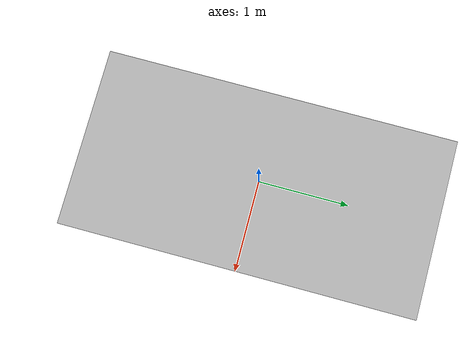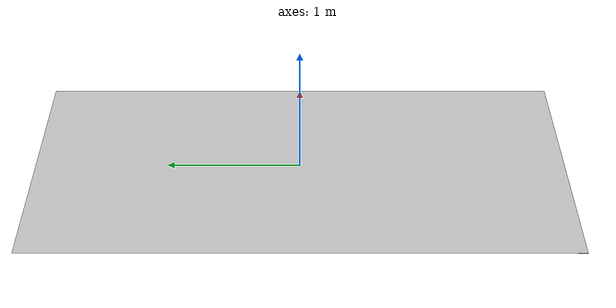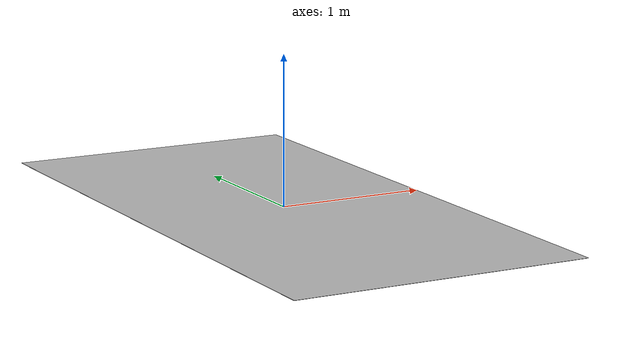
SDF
<?xml version="1.0" ?>
<sdf version="1.5">
  <model name="Mitte">
    <static>true</static>
    <link name="link">
      <collision name="collision">
        <geometry>
          <plane>
            <normal>0 0 1</normal>
            <size>2 4</size>
          </plane>
        </geometry>
      </collision>
      <visual name="visual">
        <cast_shadows>false</cast_shadows>
        <geometry>
          <plane>
            <normal>0 0 1</normal>
            <size>2 4</size>
          </plane>
        </geometry>
        <material>
          <script>
            <uri>model://mitte/materials/scripts/mitte.material</uri>
            <uri>model://mitte/materials/textures/</uri>
            <name>mitte</name>
          </script>
        </material>
      </visual>
    </link>
  </model>
</sdf>
